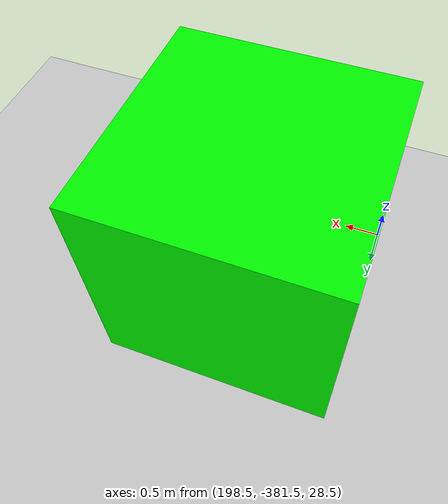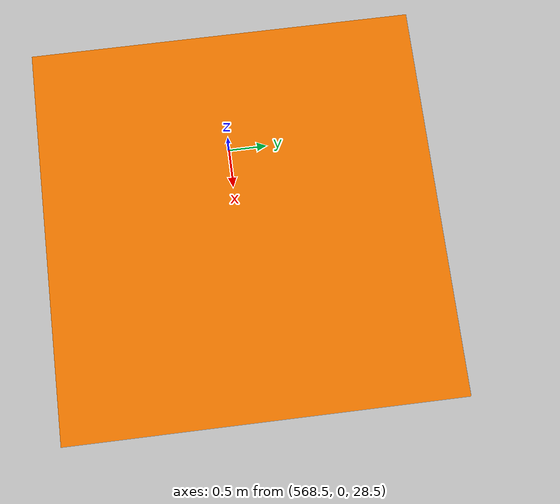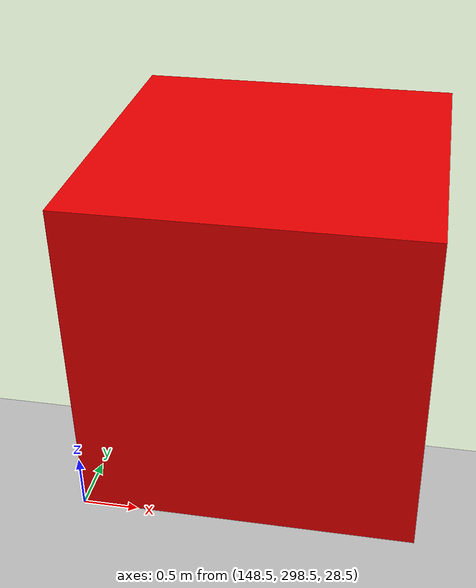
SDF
<?xml version="1.0" encoding="UTF-8"?>
<sdf version="1.9">
  <world name="mbc3_isr_moving">
    <physics type="ode">
      <max_step_size>0.004</max_step_size>
      <real_time_factor>1.0</real_time_factor>
      <real_time_update_rate>250</real_time_update_rate>
    </physics>
    <gravity>0 0 -9.8</gravity>
    <magnetic_field>6e-06 2.3e-05 -4.2e-05</magnetic_field>
    <atmosphere type="adiabatic"/>
    <scene>
      <grid>false</grid>
      <ambient>0.4 0.4 0.4 1</ambient>
      <background>0.7 0.7 0.7 1</background>
      <shadows>true</shadows>
    </scene>
    <model name="ground_plane">
      <static>true</static>
      <link name="link">
        <collision name="collision">
          <geometry>
            <plane>
              <normal>0 0 1</normal>
              <size>1 1</size>
            </plane>
          </geometry>
          <surface>
            <friction>
              <ode/>
            </friction>
            <bounce/>
            <contact/>
          </surface>
        </collision>
        <visual name="visual">
          <geometry>
            <plane>
              <normal>0 0 1</normal>
              <size>500 500</size>
            </plane>
          </geometry>
          <material>
            <ambient>0.8 0.8 0.8 1</ambient>
            <diffuse>0.8 0.8 0.8 1</diffuse>
            <specular>0.8 0.8 0.8 1</specular>
          </material>
        </visual>
        <pose>0 0 0 0 -0 0</pose>
        <inertial>
          <pose>0 0 0 0 -0 0</pose>
          <mass>1</mass>
          <inertia>
            <ixx>1</ixx>
            <ixy>0</ixy>
            <ixz>0</ixz>
            <iyy>1</iyy>
            <iyz>0</iyz>
            <izz>1</izz>
          </inertia>
        </inertial>
        <enable_wind>false</enable_wind>
      </link>
      <pose>0 0 0 0 -0 0</pose>
      <self_collide>false</self_collide>
    </model>
    <light name="sunUTC" type="directional">
      <pose>0 0 500 0 -0 0</pose>
      <cast_shadows>true</cast_shadows>
      <intensity>1</intensity>
      <direction>0.001 0.625 -0.78</direction>
      <diffuse>0.904 0.904 0.904 1</diffuse>
      <specular>0.271 0.271 0.271 1</specular>
      <attenuation>
        <range>2000</range>
        <linear>0</linear>
        <constant>1</constant>
        <quadratic>0</quadratic>
      </attenuation>
      <spot>
        <inner_angle>0</inner_angle>
        <outer_angle>0</outer_angle>
        <falloff>0</falloff>
      </spot>
    </light>
    <spherical_coordinates>
      <surface_model>EARTH_WGS84</surface_model>
      <world_frame_orientation>ENU</world_frame_orientation>
      <latitude_deg>47.397971057728974</latitude_deg>
      <longitude_deg> 8.546163739800146</longitude_deg>
      <elevation>0</elevation>
    </spherical_coordinates>

    <model name="radar_target_1">
      <pose>150 300 30 0 0 0</pose>
      <link name="link">
        <kinematic>true</kinematic>
        <gravity>false</gravity>
        <inertial><mass>5</mass><inertia><ixx>0.167</ixx><ixy>0</ixy><ixz>0</ixz><iyy>0.167</iyy><iyz>0</iyz><izz>0.167</izz></inertia></inertial>
        <collision name="col"><geometry><box><size>3 3 3</size></box></geometry></collision>
        <visual name="vis"><geometry><box><size>3 3 3</size></box></geometry>
          <material><ambient>1 0 0 1</ambient><diffuse>1 0 0 1</diffuse></material></visual>
      </link>
      <plugin filename="gz-sim-trajectory-follower-system" name="gz::sim::systems::TrajectoryFollower">
        <link_name>link</link_name><loop>true</loop><force>800</force><torque>800</torque>
        <waypoints>
          <waypoint>150.0 300.0</waypoint>
          <waypoint>138.6 357.4</waypoint>
          <waypoint>106.1 406.1</waypoint>
          <waypoint>57.4 438.6</waypoint>
          <waypoint>0.0 450.0</waypoint>
          <waypoint>-57.4 438.6</waypoint>
          <waypoint>-106.1 406.1</waypoint>
          <waypoint>-138.6 357.4</waypoint>
          <waypoint>-150.0 300.0</waypoint>
          <waypoint>-138.6 242.6</waypoint>
          <waypoint>-106.1 193.9</waypoint>
          <waypoint>-57.4 161.4</waypoint>
          <waypoint>-0.0 150.0</waypoint>
          <waypoint>57.4 161.4</waypoint>
          <waypoint>106.1 193.9</waypoint>
          <waypoint>138.6 242.6</waypoint>
        </waypoints>
      </plugin>
    </model>
    <model name="radar_target_2">
      <pose>570 0 30 0 0 0</pose>
      <link name="link">
        <kinematic>true</kinematic>
        <gravity>false</gravity>
        <inertial><mass>5</mass><inertia><ixx>0.167</ixx><ixy>0</ixy><ixz>0</ixz><iyy>0.167</iyy><iyz>0</iyz><izz>0.167</izz></inertia></inertial>
        <collision name="col"><geometry><box><size>3 3 3</size></box></geometry></collision>
        <visual name="vis"><geometry><box><size>3 3 3</size></box></geometry>
          <material><ambient>1 0.5 0 1</ambient><diffuse>1 0.5 0 1</diffuse></material></visual>
      </link>
      <plugin filename="gz-sim-trajectory-follower-system" name="gz::sim::systems::TrajectoryFollower">
        <link_name>link</link_name><loop>true</loop><force>300</force><torque>300</torque>
        <waypoints>
          <waypoint>570.0 0.0</waypoint>
          <waypoint>560.9 45.9</waypoint>
          <waypoint>534.9 84.9</waypoint>
          <waypoint>495.9 110.9</waypoint>
          <waypoint>450.0 120.0</waypoint>
          <waypoint>404.1 110.9</waypoint>
          <waypoint>365.1 84.9</waypoint>
          <waypoint>339.1 45.9</waypoint>
          <waypoint>330.0 0.0</waypoint>
          <waypoint>339.1 -45.9</waypoint>
          <waypoint>365.1 -84.9</waypoint>
          <waypoint>404.1 -110.9</waypoint>
          <waypoint>450.0 -120.0</waypoint>
          <waypoint>495.9 -110.9</waypoint>
          <waypoint>534.9 -84.9</waypoint>
          <waypoint>560.9 -45.9</waypoint>
        </waypoints>
      </plugin>
    </model>
    <model name="radar_target_3">
      <pose>430 250 30 0 0 0</pose>
      <link name="link">
        <kinematic>true</kinematic>
        <gravity>false</gravity>
        <inertial><mass>5</mass><inertia><ixx>0.167</ixx><ixy>0</ixy><ixz>0</ixz><iyy>0.167</iyy><iyz>0</iyz><izz>0.167</izz></inertia></inertial>
        <collision name="col"><geometry><box><size>3 3 3</size></box></geometry></collision>
        <visual name="vis"><geometry><box><size>3 3 3</size></box></geometry>
          <material><ambient>1 1 0 1</ambient><diffuse>1 1 0 1</diffuse></material></visual>
      </link>
      <plugin filename="gz-sim-trajectory-follower-system" name="gz::sim::systems::TrajectoryFollower">
        <link_name>link</link_name><loop>true</loop><force>2000</force><torque>2000</torque>
        <waypoints>
          <waypoint>430.0 250.0</waypoint>
          <waypoint>416.3 318.9</waypoint>
          <waypoint>377.3 377.3</waypoint>
          <waypoint>318.9 416.3</waypoint>
          <waypoint>250.0 430.0</waypoint>
          <waypoint>181.1 416.3</waypoint>
          <waypoint>122.7 377.3</waypoint>
          <waypoint>83.7 318.9</waypoint>
          <waypoint>70.0 250.0</waypoint>
          <waypoint>83.7 181.1</waypoint>
          <waypoint>122.7 122.7</waypoint>
          <waypoint>181.1 83.7</waypoint>
          <waypoint>250.0 70.0</waypoint>
          <waypoint>318.9 83.7</waypoint>
          <waypoint>377.3 122.7</waypoint>
          <waypoint>416.3 181.1</waypoint>
        </waypoints>
      </plugin>
    </model>
    <model name="radar_target_4">
      <pose>200 -380 30 0 0 0</pose>
      <link name="link">
        <kinematic>true</kinematic>
        <gravity>false</gravity>
        <inertial><mass>5</mass><inertia><ixx>0.167</ixx><ixy>0</ixy><ixz>0</ixz><iyy>0.167</iyy><iyz>0</iyz><izz>0.167</izz></inertia></inertial>
        <collision name="col"><geometry><box><size>3 3 3</size></box></geometry></collision>
        <visual name="vis"><geometry><box><size>3 3 3</size></box></geometry>
          <material><ambient>0 1 0 1</ambient><diffuse>0 1 0 1</diffuse></material></visual>
      </link>
      <plugin filename="gz-sim-trajectory-follower-system" name="gz::sim::systems::TrajectoryFollower">
        <link_name>link</link_name><loop>true</loop><force>4000</force><torque>4000</torque>
        <waypoints>
          <waypoint>200.0 -380.0</waypoint>
          <waypoint>184.8 -303.5</waypoint>
          <waypoint>141.4 -238.6</waypoint>
          <waypoint>76.5 -195.2</waypoint>
          <waypoint>0.0 -180.0</waypoint>
          <waypoint>-76.5 -195.2</waypoint>
          <waypoint>-141.4 -238.6</waypoint>
          <waypoint>-184.8 -303.5</waypoint>
          <waypoint>-200.0 -380.0</waypoint>
          <waypoint>-184.8 -456.5</waypoint>
          <waypoint>-141.4 -521.4</waypoint>
          <waypoint>-76.5 -564.8</waypoint>
          <waypoint>-0.0 -580.0</waypoint>
          <waypoint>76.5 -564.8</waypoint>
          <waypoint>141.4 -521.4</waypoint>
          <waypoint>184.8 -456.5</waypoint>
        </waypoints>
      </plugin>
    </model>
    <model name="radar_target_5">
      <pose>-390 150 30 0 0 0</pose>
      <link name="link">
        <kinematic>true</kinematic>
        <gravity>false</gravity>
        <inertial><mass>5</mass><inertia><ixx>0.167</ixx><ixy>0</ixy><ixz>0</ixz><iyy>0.167</iyy><iyz>0</iyz><izz>0.167</izz></inertia></inertial>
        <collision name="col"><geometry><box><size>3 3 3</size></box></geometry></collision>
        <visual name="vis"><geometry><box><size>3 3 3</size></box></geometry>
          <material><ambient>0 0.5 1 1</ambient><diffuse>0 0.5 1 1</diffuse></material></visual>
      </link>
      <plugin filename="gz-sim-trajectory-follower-system" name="gz::sim::systems::TrajectoryFollower">
        <link_name>link</link_name><loop>true</loop><force>1200</force><torque>1200</torque>
        <waypoints>
          <waypoint>-390.0 150.0</waypoint>
          <waypoint>-402.2 211.2</waypoint>
          <waypoint>-436.9 263.1</waypoint>
          <waypoint>-488.8 297.8</waypoint>
          <waypoint>-550.0 310.0</waypoint>
          <waypoint>-611.2 297.8</waypoint>
          <waypoint>-663.1 263.1</waypoint>
          <waypoint>-697.8 211.2</waypoint>
          <waypoint>-710.0 150.0</waypoint>
          <waypoint>-697.8 88.8</waypoint>
          <waypoint>-663.1 36.9</waypoint>
          <waypoint>-611.2 2.2</waypoint>
          <waypoint>-550.0 -10.0</waypoint>
          <waypoint>-488.8 2.2</waypoint>
          <waypoint>-436.9 36.9</waypoint>
          <waypoint>-402.2 88.8</waypoint>
        </waypoints>
      </plugin>
    </model>
  </world>
</sdf>
